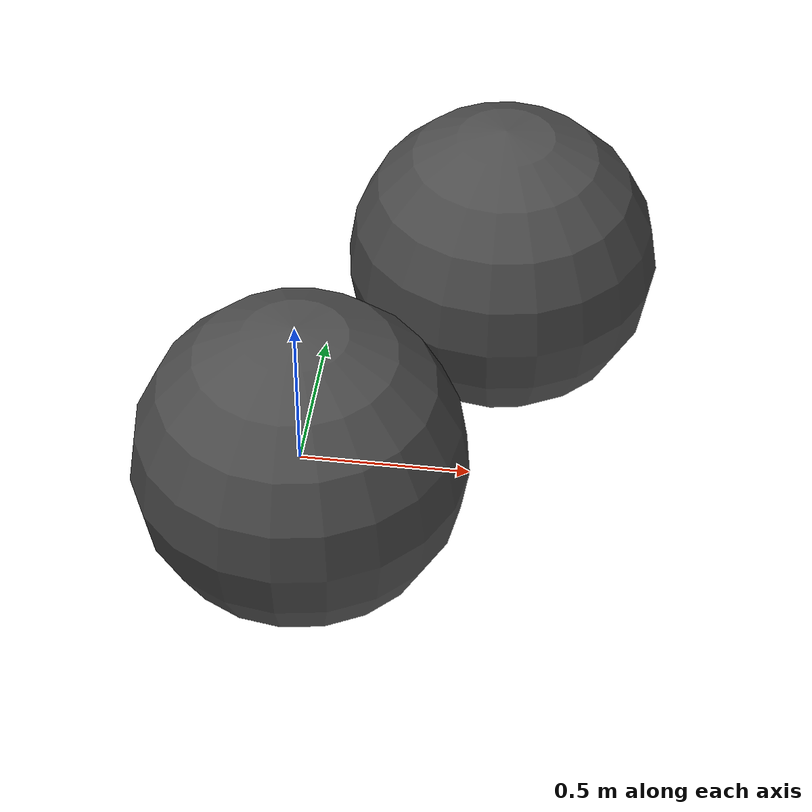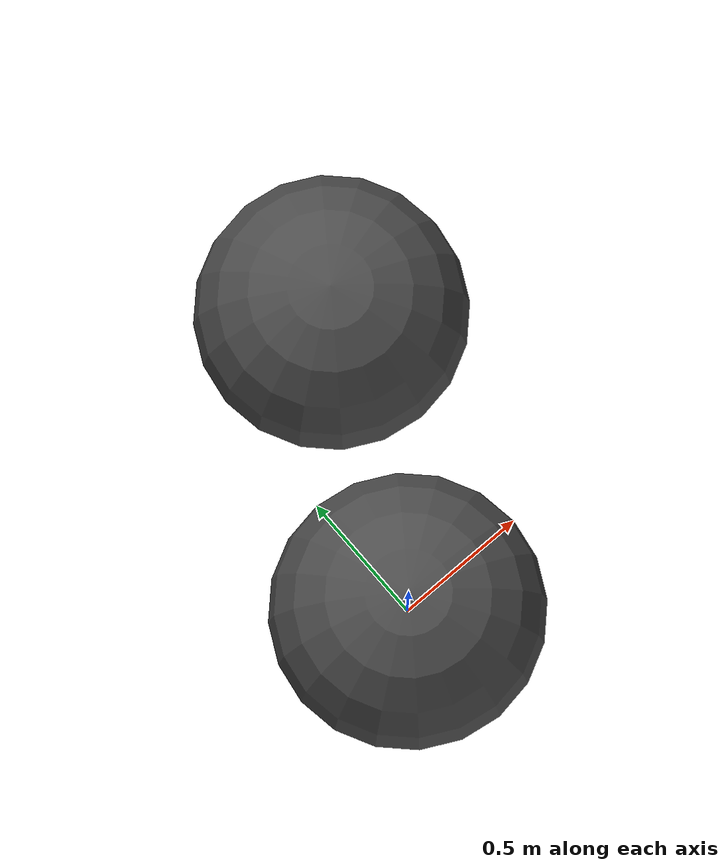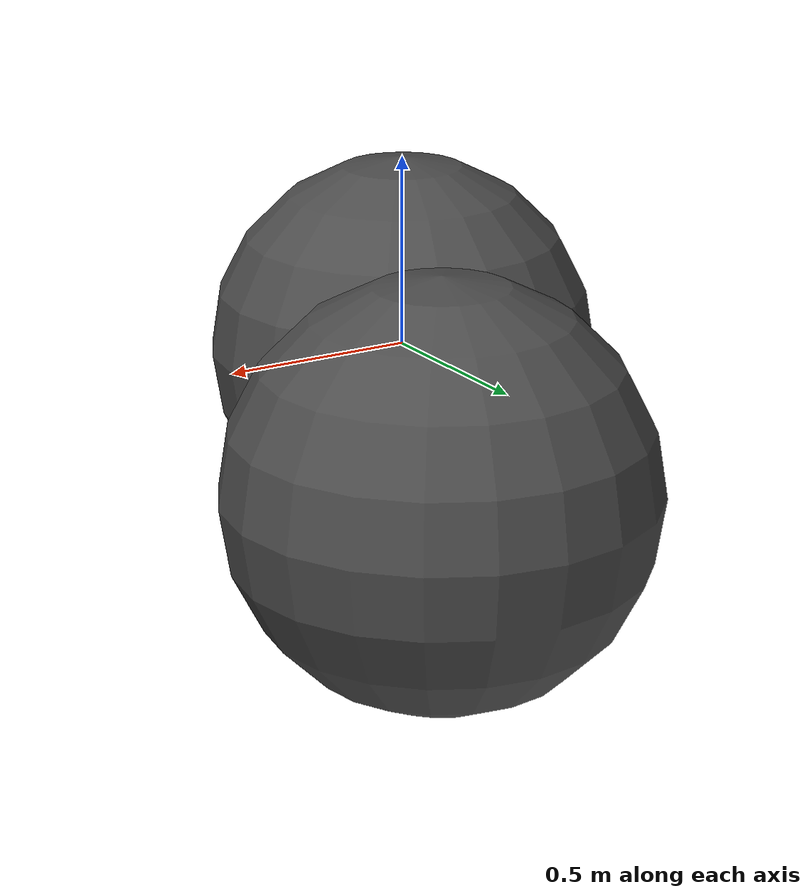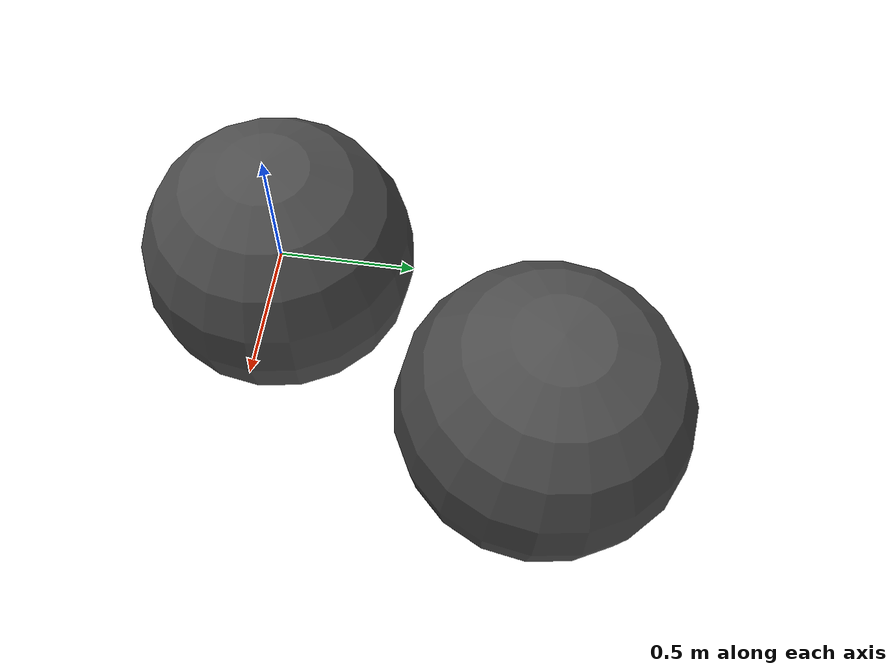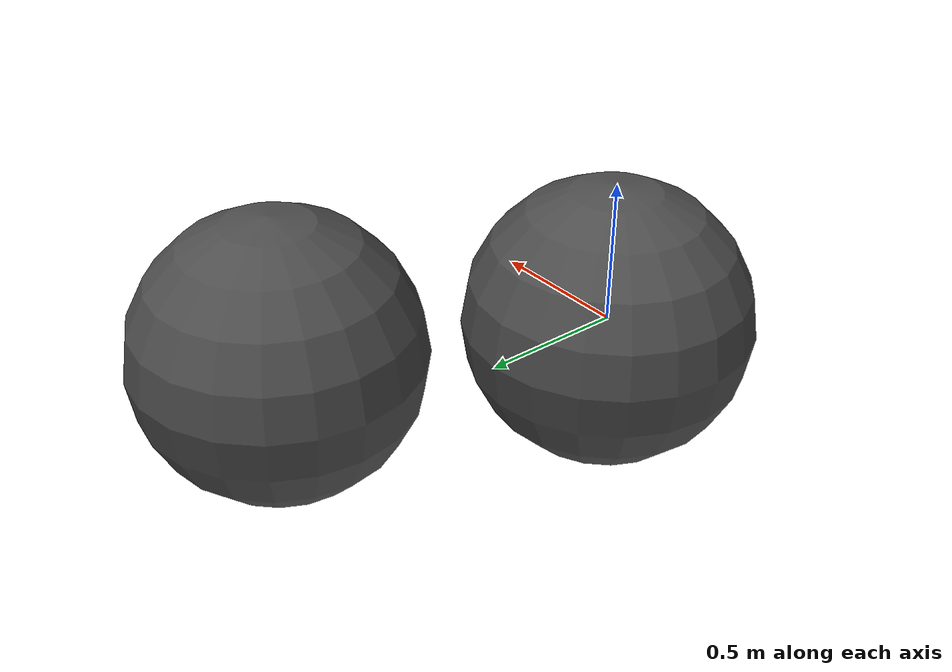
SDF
<?xml version="1.0" ?>
<sdf version="1.10">
  <world name="lights_command">
    <physics name="1ms" type="ode">
      <max_step_size>0.001</max_step_size>
      <real_time_factor>0</real_time_factor>
    </physics>
    <plugin
      filename="gz-sim-scene-broadcaster-system"
      name="gz::sim::systems::SceneBroadcaster">
    </plugin>
    <plugin
      filename='gz-sim-user-commands-system'
      name='gz::sim::systems::UserCommands'>
      <set_all_light_entities>true</set_all_light_entities>
    </plugin>
    <plugin
      filename="gz-sim-sensors-system"
      name="gz::sim::systems::Sensors">
      <render_engine>ogre2</render_engine>
    </plugin>

    <light type="directional" name="directional">
      <cast_shadows>true</cast_shadows>
      <pose>0 0 10 0 0 0</pose>
      <diffuse>0.8 0.8 0.8 1</diffuse>
      <specular>0.2 0.2 0.2 1</specular>
      <attenuation>
        <range>100</range>
        <constant>0.9</constant>
        <linear>0.01</linear>
        <quadratic>0.001</quadratic>
      </attenuation>
      <direction>0.5 0.2 -0.9</direction>
    </light>

    <light type="point" name="point">
      <pose>0 -1.5 3 0 0 0</pose>
      <diffuse>1 0 0 1</diffuse>
      <specular>.1 .1 .1 1</specular>
      <attenuation>
        <range>4</range>
        <constant>0.2</constant>
        <linear>0.5</linear>
        <quadratic>0.01</quadratic>
      </attenuation>
      <cast_shadows>false</cast_shadows>
    </light>

    <light type="spot" name="spot">
      <pose>0 1.5 3 0 0 0</pose>
      <diffuse>0 1 0 1</diffuse>
      <specular>.2 .2 .2 1</specular>
      <attenuation>
        <range>5</range>
        <constant>0.3</constant>
        <linear>0.4</linear>
        <quadratic>0.001</quadratic>
      </attenuation>
      <direction>0 0 -1</direction>
      <spot>
        <inner_angle>0.1</inner_angle>
        <outer_angle>0.5</outer_angle>
        <falloff>0.8</falloff>
      </spot>
      <cast_shadows>false</cast_shadows>
    </light>

    <model name="sphere_0">
      <pose>0 0.0 0.0 0 0 0</pose>
      <link name="sphere_link_0">
        <!-- Added a render sensor to trigger RenderUtil:Update -->
        <sensor name="camera" type="camera">
          <pose>1 0 1.3 0 0 0</pose>
          <camera>
            <horizontal_fov>1.047</horizontal_fov>
            <image>
              <width>320</width>
              <height>240</height>
            </image>
            <clip>
              <near>0.1</near>
              <far>100</far>
            </clip>
          </camera>
          <always_on>1</always_on>
          <update_rate>30</update_rate>
          <visualize>false</visualize>
          <topic>camera</topic>
        </sensor>
        <visual name="sphere_visual_0">
          <geometry>
            <sphere>
              <radius>0.5</radius>
            </sphere>
          </geometry>
          <material>
            <ambient>0.3 0.3 0.3 1</ambient>
            <diffuse>0.3 0.3 0.3 1</diffuse>
            <specular>0.3 0.3 0.3 1</specular>
          </material>
        </visual>
        <light type="spot" name="sphere_light">
          <pose>0 0 1.0 0 0 0</pose>
          <cast_shadows>false</cast_shadows>
          <visualize>1</visualize>
          <diffuse>1.0 1.0 1.0 1.0</diffuse>
          <specular>1.0 1.0 1.0 1.0</specular>
          <direction>0 0 -1</direction>
          <intensity>1.0</intensity>
          <spot>
            <inner_angle>2.1</inner_angle>
            <outer_angle>2.1</outer_angle>
          </spot>
        </light>
      </link>
    </model>
    <model name="sphere_1">
      <pose>0.5 1.0 0.0 0 0 0</pose>
      <link name="sphere_link_1">
        <visual name="sphere_visual_1">
          <geometry>
            <sphere>
              <radius>0.5</radius>
            </sphere>
          </geometry>
          <material>
            <ambient>0.3 0.3 0.3 1</ambient>
            <diffuse>0.3 0.3 0.3 1</diffuse>
            <specular>0.3 0.3 0.3 1</specular>
          </material>
        </visual>
        <light type="spot" name="sphere_light">
          <pose>0 0 1.0 0 0 0</pose>
          <cast_shadows>false</cast_shadows>
          <visualize>1</visualize>
          <diffuse>1.0 1.0 1.0 1.0</diffuse>
          <specular>1.0 1.0 1.0 1.0</specular>
          <direction>0 0 -1</direction>
          <intensity>1.0</intensity>
          <spot>
            <inner_angle>2.1</inner_angle>
            <outer_angle>2.1</outer_angle>
          </spot>
        </light>
      </link>
    </model>
  </world>
</sdf>
